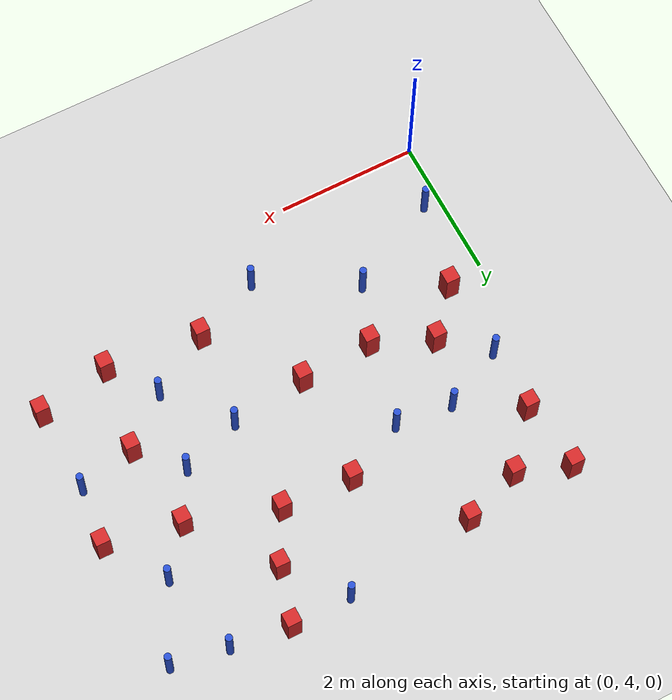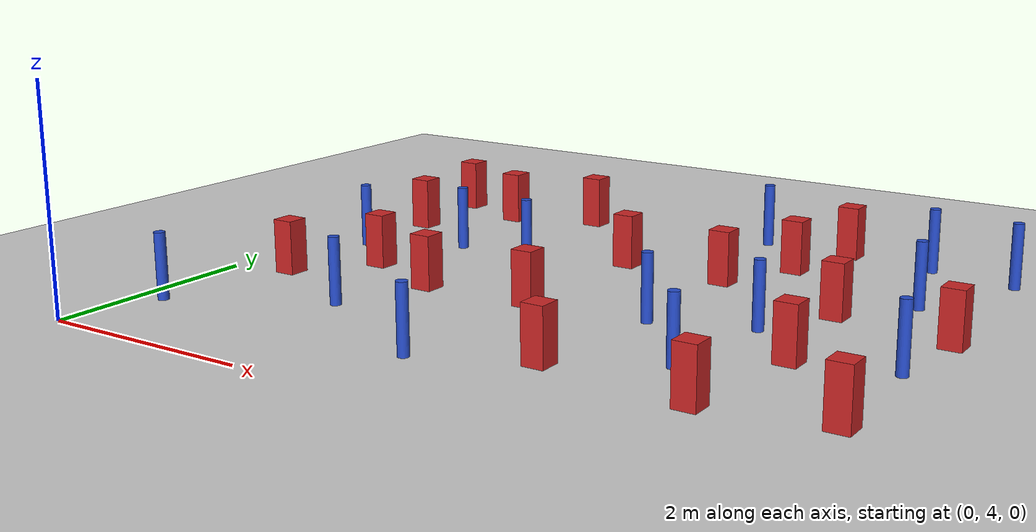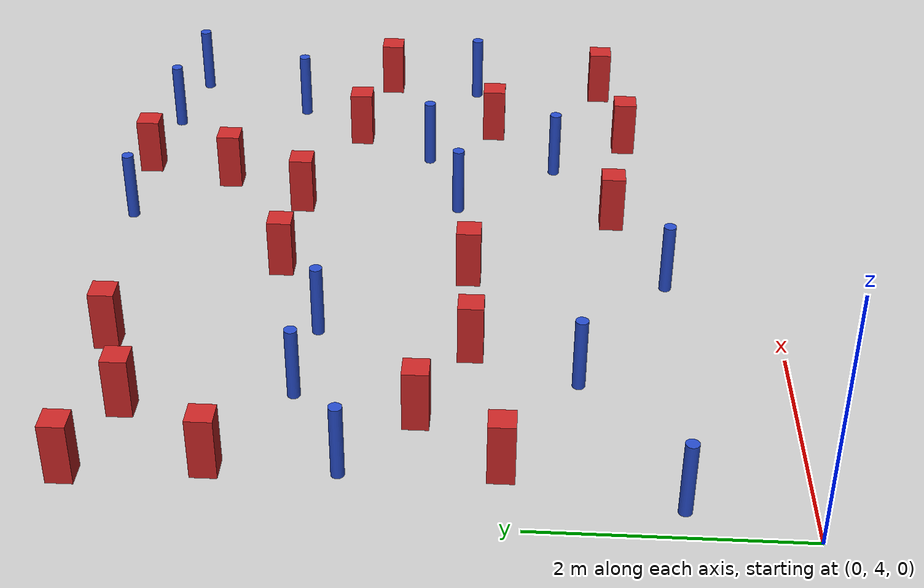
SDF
<sdf version="1.6">
 <world name="default">
  <model name="ground_plane">
   <static>1</static>
   <link name="link">
    <collision name="collision">
     <geometry><plane><normal>0 0 1</normal><size>100 100</size></plane></geometry>
     <surface><friction><ode><mu>100</mu><mu2>50</mu2></ode></friction></surface>
    </collision>
    <visual name="visual">
     <cast_shadows>0</cast_shadows>
     <geometry><plane><normal>0 0 1</normal><size>100 100</size></plane></geometry>
     <material>
      <script><uri>file://media/materials/scripts/gazebo.material</uri><name>Gazebo/Grey</name></script>
     </material>
    </visual>
   </link>
  </model>
  <model name="square_post_obstacle6">
   <static>0</static>
   <link name="link">
    <pose>0 0 0.25 0 -0 0</pose>
    <inertial>
     <mass>100</mass>
     <inertia>
      <ixx>0.166667</ixx>
      <ixy>0</ixy>
      <ixz>0</ixz>
      <iyy>0.166667</iyy>
      <iyz>0</iyz>
      <izz>0.166667</izz>
     </inertia>
    </inertial>
    <collision name="collision"><geometry><box><size>0.2 0.2 0.5</size></box></geometry></collision>
    <visual name="visual">
     <geometry><box><size>0.2 0.2 0.5</size></box></geometry>
     <material>
      <script><name>Gazebo/Red</name><uri>file://media/materials/scripts/gazebo.material</uri></script>
     </material>
    </visual>
   </link>
   <pose>5.26196 5.11522 0 -1e-06 7e-06 -0.000607</pose>
  </model>
  <model name="pole_obstacle6">
   <static>0</static>
   <link name="link">
    <pose>0 0 0.3 0 -0 0</pose>
    <inertial>
     <mass>1</mass>
     <inertia><ixx>0.145833</ixx><ixy>0</ixy><ixz>0</ixz><iyy>0.145833</iyy><iyz>0</iyz><izz>0.125</izz></inertia>
    </inertial>
    <collision name="collision">
     <geometry><cylinder><radius>0.05</radius><length>0.6</length></cylinder></geometry>
    </collision>
    <visual name="visual">
     <geometry><cylinder><radius>0.05</radius><length>0.6</length></cylinder></geometry>
     <material>
      <script><name>Gazebo/Blue</name><uri>file://media/materials/scripts/gazebo.material</uri></script>
     </material>
    </visual>
   </link>
   <pose>2.18299 7.62151 -5e-06 0 0 -1e-05</pose>
  </model>
  <model name="square_post_obstacle21">
   <static>0</static>
   <link name="link">
    <pose>0 0 0.25 0 -0 0</pose>
    <inertial>
     <mass>100</mass>
     <inertia>
      <ixx>0.166667</ixx>
      <ixy>0</ixy>
      <ixz>0</ixz>
      <iyy>0.166667</iyy>
      <iyz>0</iyz>
      <izz>0.166667</izz>
     </inertia>
    </inertial>
    <collision name="collision"><geometry><box><size>0.2 0.2 0.5</size></box></geometry></collision>
    <visual name="visual">
     <geometry><box><size>0.2 0.2 0.5</size></box></geometry>
     <material>
      <script><name>Gazebo/Red</name><uri>file://media/materials/scripts/gazebo.material</uri></script>
     </material>
    </visual>
   </link>
   <pose>6.29388 5.31356 0 -1e-06 7e-06 -0.000607</pose>
  </model>
  <model name="square_post_obstacle22">
   <static>0</static>
   <link name="link">
    <pose>0 0 0.25 0 -0 0</pose>
    <inertial>
     <mass>100</mass>
     <inertia>
      <ixx>0.166667</ixx>
      <ixy>0</ixy>
      <ixz>0</ixz>
      <iyy>0.166667</iyy>
      <iyz>0</iyz>
      <izz>0.166667</izz>
     </inertia>
    </inertial>
    <collision name="collision"><geometry><box><size>0.2 0.2 0.5</size></box></geometry></collision>
    <visual name="visual">
     <geometry><box><size>0.2 0.2 0.5</size></box></geometry>
     <material>
      <script><name>Gazebo/Red</name><uri>file://media/materials/scripts/gazebo.material</uri></script>
     </material>
    </visual>
   </link>
   <pose>1.95897 9.23439 0 -1e-06 7e-06 -0.000607</pose>
  </model>
  <model name="pole_obstacle24">
   <static>0</static>
   <link name="link">
    <pose>0 0 0.3 0 -0 0</pose>
    <inertial>
     <mass>1</mass>
     <inertia><ixx>0.145833</ixx><ixy>0</ixy><ixz>0</ixz><iyy>0.145833</iyy><iyz>0</iyz><izz>0.125</izz></inertia>
    </inertial>
    <collision name="collision">
     <geometry><cylinder><radius>0.05</radius><length>0.6</length></cylinder></geometry>
    </collision>
    <visual name="visual">
     <geometry><cylinder><radius>0.05</radius><length>0.6</length></cylinder></geometry>
     <material>
      <script><name>Gazebo/Blue</name><uri>file://media/materials/scripts/gazebo.material</uri></script>
     </material>
    </visual>
   </link>
   <pose>2.93959 4.86071 -5e-06 0 0 -1e-05</pose>
  </model>
  <model name="square_post_obstacle26">
   <static>0</static>
   <link name="link">
    <pose>0 0 0.25 0 -0 0</pose>
    <inertial>
     <mass>100</mass>
     <inertia>
      <ixx>0.166667</ixx>
      <ixy>0</ixy>
      <ixz>0</ixz>
      <iyy>0.166667</iyy>
      <iyz>0</iyz>
      <izz>0.166667</izz>
     </inertia>
    </inertial>
    <collision name="collision"><geometry><box><size>0.2 0.2 0.5</size></box></geometry></collision>
    <visual name="visual">
     <geometry><box><size>0.2 0.2 0.5</size></box></geometry>
     <material>
      <script><name>Gazebo/Red</name><uri>file://media/materials/scripts/gazebo.material</uri></script>
     </material>
    </visual>
   </link>
   <pose>4.68687 9.44771 0 -1e-06 7e-06 -0.000607</pose>
  </model>
  <model name="square_post_obstacle28">
   <static>0</static>
   <link name="link">
    <pose>0 0 0.25 0 -0 0</pose>
    <inertial>
     <mass>100</mass>
     <inertia>
      <ixx>0.166667</ixx>
      <ixy>0</ixy>
      <ixz>0</ixz>
      <iyy>0.166667</iyy>
      <iyz>0</iyz>
      <izz>0.166667</izz>
     </inertia>
    </inertial>
    <collision name="collision"><geometry><box><size>0.2 0.2 0.5</size></box></geometry></collision>
    <visual name="visual">
     <geometry><box><size>0.2 0.2 0.5</size></box></geometry>
     <material>
      <script><name>Gazebo/Red</name><uri>file://media/materials/scripts/gazebo.material</uri></script>
     </material>
    </visual>
   </link>
   <pose>4.45696 8.67659 0 -1e-06 7e-06 -0.000607</pose>
  </model>
  <model name="pole_obstacle30">
   <static>0</static>
   <link name="link">
    <pose>0 0 0.3 0 -0 0</pose>
    <inertial>
     <mass>1</mass>
     <inertia><ixx>0.145833</ixx><ixy>0</ixy><ixz>0</ixz><iyy>0.145833</iyy><iyz>0</iyz><izz>0.125</izz></inertia>
    </inertial>
    <collision name="collision">
     <geometry><cylinder><radius>0.05</radius><length>0.6</length></cylinder></geometry>
    </collision>
    <visual name="visual">
     <geometry><cylinder><radius>0.05</radius><length>0.6</length></cylinder></geometry>
     <material>
      <script><name>Gazebo/Blue</name><uri>file://media/materials/scripts/gazebo.material</uri></script>
     </material>
    </visual>
   </link>
   <pose>1.60497 5.58912 -5e-06 0 0 -4e-05</pose>
  </model>
  <model name="square_post_obstacle33">
   <static>0</static>
   <link name="link">
    <pose>0 0 0.25 0 -0 0</pose>
    <inertial>
     <mass>100</mass>
     <inertia>
      <ixx>0.166667</ixx>
      <ixy>0</ixy>
      <ixz>0</ixz>
      <iyy>0.166667</iyy>
      <iyz>0</iyz>
      <izz>0.166667</izz>
     </inertia>
    </inertial>
    <collision name="collision"><geometry><box><size>0.2 0.2 0.5</size></box></geometry></collision>
    <visual name="visual">
     <geometry><box><size>0.2 0.2 0.5</size></box></geometry>
     <material>
      <script><name>Gazebo/Red</name><uri>file://media/materials/scripts/gazebo.material</uri></script>
     </material>
    </visual>
   </link>
   <pose>3.90873 5.26894 0 -1e-06 7e-06 -0.000607</pose>
  </model>
  <model name="pole_obstacle40">
   <static>0</static>
   <link name="link">
    <pose>0 0 0.3 0 -0 0</pose>
    <inertial>
     <mass>1</mass>
     <inertia><ixx>0.145833</ixx><ixy>0</ixy><ixz>0</ixz><iyy>0.145833</iyy><iyz>0</iyz><izz>0.125</izz></inertia>
    </inertial>
    <collision name="collision">
     <geometry><cylinder><radius>0.05</radius><length>0.6</length></cylinder></geometry>
    </collision>
    <visual name="visual">
     <geometry><cylinder><radius>0.05</radius><length>0.6</length></cylinder></geometry>
     <material>
      <script><name>Gazebo/Blue</name><uri>file://media/materials/scripts/gazebo.material</uri></script>
     </material>
    </visual>
   </link>
   <pose>5.81154 8.16568 -5e-06 0 -0 2e-05</pose>
  </model>
  <model name="pole_obstacle44">
   <static>0</static>
   <link name="link">
    <pose>0 0 0.3 0 -0 0</pose>
    <inertial>
     <mass>1</mass>
     <inertia><ixx>0.145833</ixx><ixy>0</ixy><ixz>0</ixz><iyy>0.145833</iyy><iyz>0</iyz><izz>0.125</izz></inertia>
    </inertial>
    <collision name="collision">
     <geometry><cylinder><radius>0.05</radius><length>0.6</length></cylinder></geometry>
    </collision>
    <visual name="visual">
     <geometry><cylinder><radius>0.05</radius><length>0.6</length></cylinder></geometry>
     <material>
      <script><name>Gazebo/Blue</name><uri>file://media/materials/scripts/gazebo.material</uri></script>
     </material>
    </visual>
   </link>
   <pose>0.504518 7.28607 -5e-06 0 0 -1.6e-05</pose>
  </model>
  <model name="square_post_obstacle45">
   <static>0</static>
   <link name="link">
    <pose>0 0 0.25 0 -0 0</pose>
    <inertial>
     <mass>100</mass>
     <inertia>
      <ixx>0.166667</ixx>
      <ixy>0</ixy>
      <ixz>0</ixz>
      <iyy>0.166667</iyy>
      <iyz>0</iyz>
      <izz>0.166667</izz>
     </inertia>
    </inertial>
    <collision name="collision"><geometry><box><size>0.2 0.2 0.5</size></box></geometry></collision>
    <visual name="visual">
     <geometry><box><size>0.2 0.2 0.5</size></box></geometry>
     <material>
      <script><name>Gazebo/Red</name><uri>file://media/materials/scripts/gazebo.material</uri></script>
     </material>
    </visual>
   </link>
   <pose>5.45671 6.32822 0 -1e-06 7e-06 -0.000607</pose>
  </model>
  <model name="square_post_obstacle49">
   <static>0</static>
   <link name="link">
    <pose>0 0 0.25 0 -0 0</pose>
    <inertial>
     <mass>100</mass>
     <inertia>
      <ixx>0.166667</ixx>
      <ixy>0</ixy>
      <ixz>0</ixz>
      <iyy>0.166667</iyy>
      <iyz>0</iyz>
      <izz>0.166667</izz>
     </inertia>
    </inertial>
    <collision name="collision"><geometry><box><size>0.2 0.2 0.5</size></box></geometry></collision>
    <visual name="visual">
     <geometry><box><size>0.2 0.2 0.5</size></box></geometry>
     <material>
      <script><name>Gazebo/Red</name><uri>file://media/materials/scripts/gazebo.material</uri></script>
     </material>
    </visual>
   </link>
   <pose>0.565638 6.14735 0 -1e-06 7e-06 -0.000607</pose>
  </model>
  <model name="square_post_obstacle51">
   <static>0</static>
   <link name="link">
    <pose>0 0 0.25 0 -0 0</pose>
    <inertial>
     <mass>100</mass>
     <inertia>
      <ixx>0.166667</ixx>
      <ixy>0</ixy>
      <ixz>0</ixz>
      <iyy>0.166667</iyy>
      <iyz>0</iyz>
      <izz>0.166667</izz>
     </inertia>
    </inertial>
    <collision name="collision"><geometry><box><size>0.2 0.2 0.5</size></box></geometry></collision>
    <visual name="visual">
     <geometry><box><size>0.2 0.2 0.5</size></box></geometry>
     <material>
      <script><name>Gazebo/Red</name><uri>file://media/materials/scripts/gazebo.material</uri></script>
     </material>
    </visual>
   </link>
   <pose>2.98259 6.47116 0 -1e-06 7e-06 -0.000607</pose>
  </model>
  <model name="square_post_obstacle53">
   <static>0</static>
   <link name="link">
    <pose>0 0 0.25 0 -0 0</pose>
    <inertial>
     <mass>100</mass>
     <inertia>
      <ixx>0.166667</ixx>
      <ixy>0</ixy>
      <ixz>0</ixz>
      <iyy>0.166667</iyy>
      <iyz>0</iyz>
      <izz>0.166667</izz>
     </inertia>
    </inertial>
    <collision name="collision"><geometry><box><size>0.2 0.2 0.5</size></box></geometry></collision>
    <visual name="visual">
     <geometry><box><size>0.2 0.2 0.5</size></box></geometry>
     <material>
      <script><name>Gazebo/Red</name><uri>file://media/materials/scripts/gazebo.material</uri></script>
     </material>
    </visual>
   </link>
   <pose>3.05359 8.02437 0 -1e-06 7e-06 -0.000607</pose>
  </model>
  <model name="pole_obstacle67">
   <static>0</static>
   <link name="link">
    <pose>0 0 0.3 0 -0 0</pose>
    <inertial>
     <mass>1</mass>
     <inertia><ixx>0.145833</ixx><ixy>0</ixy><ixz>0</ixz><iyy>0.145833</iyy><iyz>0</iyz><izz>0.125</izz></inertia>
    </inertial>
    <collision name="collision">
     <geometry><cylinder><radius>0.05</radius><length>0.6</length></cylinder></geometry>
    </collision>
    <visual name="visual">
     <geometry><cylinder><radius>0.05</radius><length>0.6</length></cylinder></geometry>
     <material>
      <script><name>Gazebo/Blue</name><uri>file://media/materials/scripts/gazebo.material</uri></script>
     </material>
    </visual>
   </link>
   <pose>5.5229 9.34837 -5e-06 0 -0 1.9e-05</pose>
  </model>
  <model name="square_post_obstacle65">
   <static>0</static>
   <link name="link">
    <pose>0 0 0.25 0 -0 0</pose>
    <inertial>
     <mass>100</mass>
     <inertia>
      <ixx>0.166667</ixx>
      <ixy>0</ixy>
      <ixz>0</ixz>
      <iyy>0.166667</iyy>
      <iyz>0</iyz>
      <izz>0.166667</izz>
     </inertia>
    </inertial>
    <collision name="collision"><geometry><box><size>0.2 0.2 0.5</size></box></geometry></collision>
    <visual name="visual">
     <geometry><box><size>0.2 0.2 0.5</size></box></geometry>
     <material>
      <script><name>Gazebo/Red</name><uri>file://media/materials/scripts/gazebo.material</uri></script>
     </material>
    </visual>
   </link>
   <pose>0.396914 9.20533 0 -1e-06 7e-06 -0.000607</pose>
  </model>
  <model name="pole_obstacle68">
   <static>0</static>
   <link name="link">
    <pose>0 0 0.3 0 -0 0</pose>
    <inertial>
     <mass>1</mass>
     <inertia><ixx>0.145833</ixx><ixy>0</ixy><ixz>0</ixz><iyy>0.145833</iyy><iyz>0</iyz><izz>0.125</izz></inertia>
    </inertial>
    <collision name="collision">
     <geometry><cylinder><radius>0.05</radius><length>0.6</length></cylinder></geometry>
    </collision>
    <visual name="visual">
     <geometry><cylinder><radius>0.05</radius><length>0.6</length></cylinder></geometry>
     <material>
      <script><name>Gazebo/Blue</name><uri>file://media/materials/scripts/gazebo.material</uri></script>
     </material>
    </visual>
   </link>
   <pose>3.82892 9.44918 -5e-06 0 0 -7.3e-05</pose>
  </model>
  <model name="square_post_obstacle73">
   <static>0</static>
   <link name="link">
    <pose>0 0 0.25 0 -0 0</pose>
    <inertial>
     <mass>100</mass>
     <inertia>
      <ixx>0.166667</ixx>
      <ixy>0</ixy>
      <ixz>0</ixz>
      <iyy>0.166667</iyy>
      <iyz>0</iyz>
      <izz>0.166667</izz>
     </inertia>
    </inertial>
    <collision name="collision"><geometry><box><size>0.2 0.2 0.5</size></box></geometry></collision>
    <visual name="visual">
     <geometry><box><size>0.2 0.2 0.5</size></box></geometry>
     <material>
      <script><name>Gazebo/Red</name><uri>file://media/materials/scripts/gazebo.material</uri></script>
     </material>
    </visual>
   </link>
   <pose>0.509237 8.21734 0 -1e-06 7e-06 -0.000607</pose>
  </model>
  <model name="pole_obstacle81">
   <static>0</static>
   <link name="link">
    <pose>0 0 0.3 0 -0 0</pose>
    <inertial>
     <mass>1</mass>
     <inertia><ixx>0.145833</ixx><ixy>0</ixy><ixz>0</ixz><iyy>0.145833</iyy><iyz>0</iyz><izz>0.125</izz></inertia>
    </inertial>
    <collision name="collision">
     <geometry><cylinder><radius>0.05</radius><length>0.6</length></cylinder></geometry>
    </collision>
    <visual name="visual">
     <geometry><cylinder><radius>0.05</radius><length>0.6</length></cylinder></geometry>
     <material>
      <script><name>Gazebo/Blue</name><uri>file://media/materials/scripts/gazebo.material</uri></script>
     </material>
    </visual>
   </link>
   <pose>6.3141 9.21451 -5e-06 0 -0 1.9e-05</pose>
  </model>
  <model name="pole_obstacle86">
   <static>0</static>
   <link name="link">
    <pose>0 0 0.3 0 -0 0</pose>
    <inertial>
     <mass>1</mass>
     <inertia><ixx>0.145833</ixx><ixy>0</ixy><ixz>0</ixz><iyy>0.145833</iyy><iyz>0</iyz><izz>0.125</izz></inertia>
    </inertial>
    <collision name="collision">
     <geometry><cylinder><radius>0.05</radius><length>0.6</length></cylinder></geometry>
    </collision>
    <visual name="visual">
     <geometry><cylinder><radius>0.05</radius><length>0.6</length></cylinder></geometry>
     <material>
      <script><name>Gazebo/Blue</name><uri>file://media/materials/scripts/gazebo.material</uri></script>
     </material>
    </visual>
   </link>
   <pose>4.06939 6.60686 -5e-06 0 0 -6.6e-05</pose>
  </model>
  <model name="pole_obstacle87">
   <static>0</static>
   <link name="link">
    <pose>0 0 0.3 0 -0 0</pose>
    <inertial>
     <mass>1</mass>
     <inertia><ixx>0.145833</ixx><ixy>0</ixy><ixz>0</ixz><iyy>0.145833</iyy><iyz>0</iyz><izz>0.125</izz></inertia>
    </inertial>
    <collision name="collision">
     <geometry><cylinder><radius>0.05</radius><length>0.6</length></cylinder></geometry>
    </collision>
    <visual name="visual">
     <geometry><cylinder><radius>0.05</radius><length>0.6</length></cylinder></geometry>
     <material>
      <script><name>Gazebo/Blue</name><uri>file://media/materials/scripts/gazebo.material</uri></script>
     </material>
    </visual>
   </link>
   <pose>4.92516 6.90507 -5e-06 0 0 -6.7e-05</pose>
  </model>
  <model name="square_post_obstacle93">
   <static>0</static>
   <link name="link">
    <pose>0 0 0.25 0 -0 0</pose>
    <inertial>
     <mass>100</mass>
     <inertia>
      <ixx>0.166667</ixx>
      <ixy>0</ixy>
      <ixz>0</ixz>
      <iyy>0.166667</iyy>
      <iyz>0</iyz>
      <izz>0.166667</izz>
     </inertia>
    </inertial>
    <collision name="collision"><geometry><box><size>0.2 0.2 0.5</size></box></geometry></collision>
    <visual name="visual">
     <geometry><box><size>0.2 0.2 0.5</size></box></geometry>
     <material>
      <script><name>Gazebo/Red</name><uri>file://media/materials/scripts/gazebo.material</uri></script>
     </material>
    </visual>
   </link>
   <pose>4.06791 7.97684 0 -1e-06 7e-06 -0.000607</pose>
  </model>
  <model name="pole_obstacle94">
   <static>0</static>
   <link name="link">
    <pose>0 0 0.3 0 -0 0</pose>
    <inertial>
     <mass>1</mass>
     <inertia><ixx>0.145833</ixx><ixy>0</ixy><ixz>0</ixz><iyy>0.145833</iyy><iyz>0</iyz><izz>0.125</izz></inertia>
    </inertial>
    <collision name="collision">
     <geometry><cylinder><radius>0.05</radius><length>0.6</length></cylinder></geometry>
    </collision>
    <visual name="visual">
     <geometry><cylinder><radius>0.05</radius><length>0.6</length></cylinder></geometry>
     <material>
      <script><name>Gazebo/Blue</name><uri>file://media/materials/scripts/gazebo.material</uri></script>
     </material>
    </visual>
   </link>
   <pose>1.37204 7.70834 -5e-06 0 -0 9e-06</pose>
  </model>
  <model name="pole_obstacle102">
   <static>0</static>
   <link name="link">
    <pose>0 0 0.3 0 -0 0</pose>
    <inertial>
     <mass>1</mass>
     <inertia><ixx>0.145833</ixx><ixy>0</ixy><ixz>0</ixz><iyy>0.145833</iyy><iyz>0</iyz><izz>0.125</izz></inertia>
    </inertial>
    <collision name="collision">
     <geometry><cylinder><radius>0.05</radius><length>0.6</length></cylinder></geometry>
    </collision>
    <visual name="visual">
     <geometry><cylinder><radius>0.05</radius><length>0.6</length></cylinder></geometry>
     <material>
      <script><name>Gazebo/Blue</name><uri>file://media/materials/scripts/gazebo.material</uri></script>
     </material>
    </visual>
   </link>
   <pose>6.26799 6.51592 -5e-06 0 -0 3e-06</pose>
  </model>
  <model name="pole_obstacle104">
   <static>0</static>
   <link name="link">
    <pose>0 0 0.3 0 -0 0</pose>
    <inertial>
     <mass>1</mass>
     <inertia><ixx>0.145833</ixx><ixy>0</ixy><ixz>0</ixz><iyy>0.145833</iyy><iyz>0</iyz><izz>0.125</izz></inertia>
    </inertial>
    <collision name="collision">
     <geometry><cylinder><radius>0.05</radius><length>0.6</length></cylinder></geometry>
    </collision>
    <visual name="visual">
     <geometry><cylinder><radius>0.05</radius><length>0.6</length></cylinder></geometry>
     <material>
      <script><name>Gazebo/Blue</name><uri>file://media/materials/scripts/gazebo.material</uri></script>
     </material>
    </visual>
   </link>
   <pose>4.77292 5.76272 -4e-06 -1e-06 -0 -0.000164</pose>
  </model>
  <model name="square_post_obstacle111">
   <static>0</static>
   <link name="link">
    <pose>0 0 0.25 0 -0 0</pose>
    <inertial>
     <mass>100</mass>
     <inertia>
      <ixx>0.166667</ixx>
      <ixy>0</ixy>
      <ixz>0</ixz>
      <iyy>0.166667</iyy>
      <iyz>0</iyz>
      <izz>0.166667</izz>
     </inertia>
    </inertial>
    <collision name="collision"><geometry><box><size>0.2 0.2 0.5</size></box></geometry></collision>
    <visual name="visual">
     <geometry><box><size>0.2 0.2 0.5</size></box></geometry>
     <material>
      <script><name>Gazebo/Red</name><uri>file://media/materials/scripts/gazebo.material</uri></script>
     </material>
    </visual>
   </link>
   <pose>6.37536 7.35499 0 -1e-06 7e-06 -0.000607</pose>
  </model>
  <model name="square_post_obstacle112">
   <static>0</static>
   <link name="link">
    <pose>0 0 0.25 0 -0 0</pose>
    <inertial>
     <mass>100</mass>
     <inertia>
      <ixx>0.166667</ixx>
      <ixy>0</ixy>
      <ixz>0</ixz>
      <iyy>0.166667</iyy>
      <iyz>0</iyz>
      <izz>0.166667</izz>
     </inertia>
    </inertial>
    <collision name="collision"><geometry><box><size>0.2 0.2 0.5</size></box></geometry></collision>
    <visual name="visual">
     <geometry><box><size>0.2 0.2 0.5</size></box></geometry>
     <material>
      <script><name>Gazebo/Red</name><uri>file://media/materials/scripts/gazebo.material</uri></script>
     </material>
    </visual>
   </link>
   <pose>1.94106 6.41433 0 -1e-06 7e-06 -0.000607</pose>
  </model>
  <model name="square_post_obstacle113">
   <static>0</static>
   <link name="link">
    <pose>0 0 0.25 0 -0 0</pose>
    <inertial>
     <mass>100</mass>
     <inertia>
      <ixx>0.166667</ixx>
      <ixy>0</ixy>
      <ixz>0</ixz>
      <iyy>0.166667</iyy>
      <iyz>0</iyz>
      <izz>0.166667</izz>
     </inertia>
    </inertial>
    <collision name="collision"><geometry><box><size>0.2 0.2 0.5</size></box></geometry></collision>
    <visual name="visual">
     <geometry><box><size>0.2 0.2 0.5</size></box></geometry>
     <material>
      <script><name>Gazebo/Red</name><uri>file://media/materials/scripts/gazebo.material</uri></script>
     </material>
    </visual>
   </link>
   <pose>1.11418 6.77798 0 -1e-06 7e-06 -0.000607</pose>
  </model>
  <model name="square_post_obstacle119">
   <static>0</static>
   <link name="link">
    <pose>0 0 0.25 0 -0 0</pose>
    <inertial>
     <mass>100</mass>
     <inertia>
      <ixx>0.166667</ixx>
      <ixy>0</ixy>
      <ixz>0</ixz>
      <iyy>0.166667</iyy>
      <iyz>0</iyz>
      <izz>0.166667</izz>
     </inertia>
    </inertial>
    <collision name="collision"><geometry><box><size>0.2 0.2 0.5</size></box></geometry></collision>
    <visual name="visual">
     <geometry><box><size>0.2 0.2 0.5</size></box></geometry>
     <material>
      <script><name>Gazebo/Red</name><uri>file://media/materials/scripts/gazebo.material</uri></script>
     </material>
    </visual>
   </link>
   <pose>1.13835 8.94896 0 -1e-06 7e-06 -0.000607</pose>
  </model>
  <model name="square_post_obstacle124">
   <static>0</static>
   <link name="link">
    <pose>0 0 0.25 0 -0 0</pose>
    <inertial>
     <mass>100</mass>
     <inertia>
      <ixx>0.166667</ixx>
      <ixy>0</ixy>
      <ixz>0</ixz>
      <iyy>0.166667</iyy>
      <iyz>0</iyz>
      <izz>0.166667</izz>
     </inertia>
    </inertial>
    <collision name="collision"><geometry><box><size>0.2 0.2 0.5</size></box></geometry></collision>
    <visual name="visual">
     <geometry><box><size>0.2 0.2 0.5</size></box></geometry>
     <material>
      <script><name>Gazebo/Red</name><uri>file://media/materials/scripts/gazebo.material</uri></script>
     </material>
    </visual>
   </link>
   <pose>5.31202 7.56539 0 -1e-06 7e-06 -0.000607</pose>
  </model>
  <model name="pole_obstacle118">
   <static>0</static>
   <link name="link">
    <pose>0 0 0.3 0 -0 0</pose>
    <inertial>
     <mass>1</mass>
     <inertia><ixx>0.145833</ixx><ixy>0</ixy><ixz>0</ixz><iyy>0.145833</iyy><iyz>0</iyz><izz>0.125</izz></inertia>
    </inertial>
    <collision name="collision">
     <geometry><cylinder><radius>0.05</radius><length>0.6</length></cylinder></geometry>
    </collision>
    <visual name="visual">
     <geometry><cylinder><radius>0.05</radius><length>0.6</length></cylinder></geometry>
     <material>
      <script><name>Gazebo/Blue</name><uri>file://media/materials/scripts/gazebo.material</uri></script>
     </material>
    </visual>
   </link>
   <pose>0.257856 4.89092 -5e-06 0 -0 1e-05</pose>
  </model>
 </world>
</sdf>
